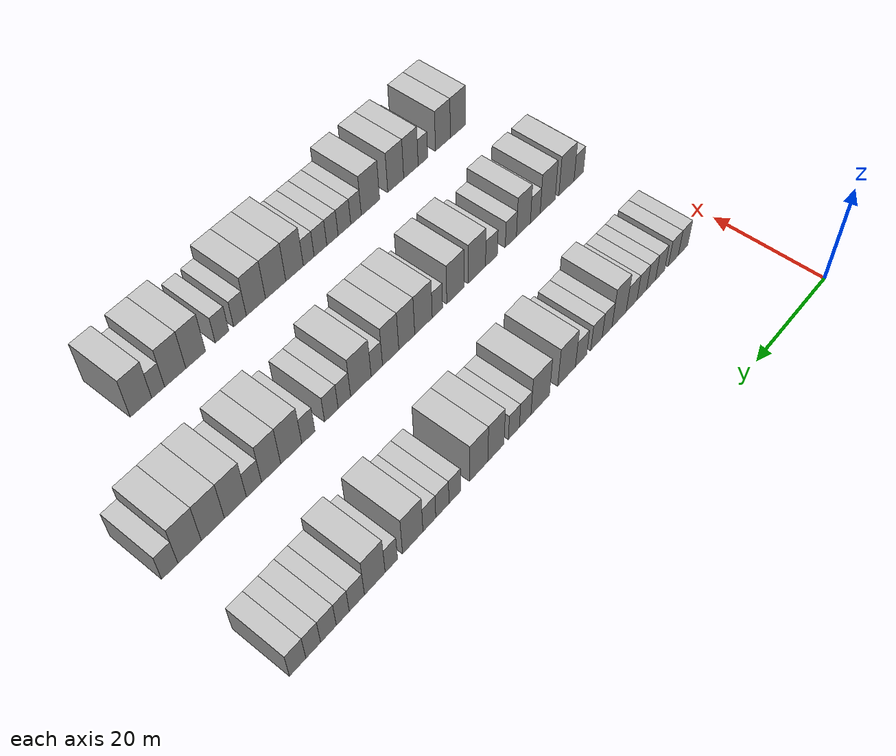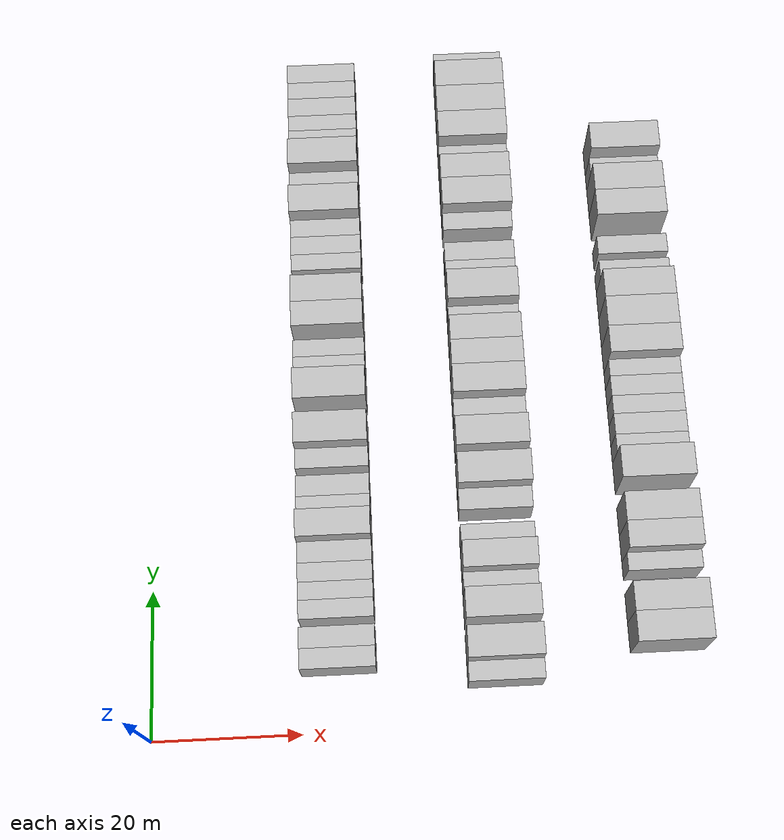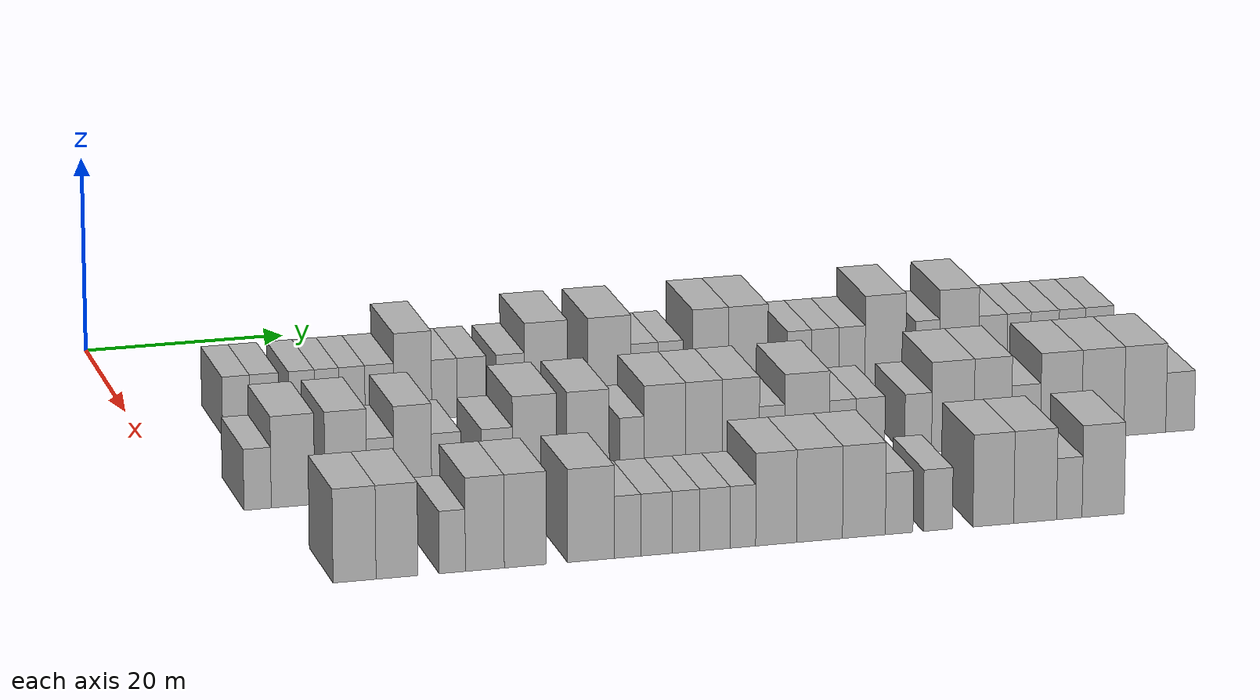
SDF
<sdf version="1.6">
 <world name="default">
  <model name="building_99">
   <static>1</static>
   <pose>25.0000 8.9645 0 0.000000 0.000000 0.000000</pose>
   <link name="link">
    <pose>0 0 3.00 0 0 0</pose>
    <collision name="collision"><geometry><box><size>10.0000 2.7129 6.0000</size></box></geometry></collision>
    <visual name="visual">
     <cast_shadows>0</cast_shadows>
     <geometry><box><size>10.0000 2.7129 6.0000</size></box></geometry>
     <material>
      <script>
       <uri>model://HANNAS_wall/materials/scripts</uri>
       <uri>model://HANNAS_wall/materials/textures</uri>
       <name>vrc/HANNAS_wall</name>
      </script>
     </material>
    </visual>
   </link>
  </model>
  <model name="building_100">
   <static>1</static>
   <pose>25.0000 11.7311 0 0.000000 0.000000 0.000000</pose>
   <link name="link">
    <pose>0 0 3.00 0 0 0</pose>
    <collision name="collision"><geometry><box><size>10.0000 2.8203 6.0000</size></box></geometry></collision>
    <visual name="visual">
     <cast_shadows>0</cast_shadows>
     <geometry><box><size>10.0000 2.8203 6.0000</size></box></geometry>
     <material>
      <script>
       <uri>model://HANNAS_wall/materials/scripts</uri>
       <uri>model://HANNAS_wall/materials/textures</uri>
       <name>vrc/HANNAS_wall</name>
      </script>
     </material>
    </visual>
   </link>
  </model>
  <model name="building_101">
   <static>1</static>
   <pose>25.0000 15.4131 0 0.000000 0.000000 0.000000</pose>
   <link name="link">
    <pose>0 0 3.00 0 0 0</pose>
    <collision name="collision"><geometry><box><size>10.0000 2.5437 6.0000</size></box></geometry></collision>
    <visual name="visual">
     <cast_shadows>0</cast_shadows>
     <geometry><box><size>10.0000 2.5437 6.0000</size></box></geometry>
     <material>
      <script>
       <uri>model://HANNAS_wall/materials/scripts</uri>
       <uri>model://HANNAS_wall/materials/textures</uri>
       <name>vrc/HANNAS_wall</name>
      </script>
     </material>
    </visual>
   </link>
  </model>
  <model name="building_102">
   <static>1</static>
   <pose>25.0000 17.8882 0 0.000000 0.000000 0.000000</pose>
   <link name="link">
    <pose>0 0 3.00 0 0 0</pose>
    <collision name="collision"><geometry><box><size>10.0000 2.4064 6.0000</size></box></geometry></collision>
    <visual name="visual">
     <cast_shadows>0</cast_shadows>
     <geometry><box><size>10.0000 2.4064 6.0000</size></box></geometry>
     <material>
      <script>
       <uri>model://HANNAS_wall/materials/scripts</uri>
       <uri>model://HANNAS_wall/materials/textures</uri>
       <name>vrc/HANNAS_wall</name>
      </script>
     </material>
    </visual>
   </link>
  </model>
  <model name="building_103">
   <static>1</static>
   <pose>25.0000 20.3849 0 0.000000 0.000000 0.000000</pose>
   <link name="link">
    <pose>0 0 3.00 0 0 0</pose>
    <collision name="collision"><geometry><box><size>10.0000 2.5872 6.0000</size></box></geometry></collision>
    <visual name="visual">
     <cast_shadows>0</cast_shadows>
     <geometry><box><size>10.0000 2.5872 6.0000</size></box></geometry>
     <material>
      <script>
       <uri>model://HANNAS_wall/materials/scripts</uri>
       <uri>model://HANNAS_wall/materials/textures</uri>
       <name>vrc/HANNAS_wall</name>
      </script>
     </material>
    </visual>
   </link>
  </model>
  <model name="building_104">
   <static>1</static>
   <pose>25.0000 23.1243 0 0.000000 0.000000 0.000000</pose>
   <link name="link">
    <pose>0 0 3.00 0 0 0</pose>
    <collision name="collision"><geometry><box><size>10.0000 2.8915 6.0000</size></box></geometry></collision>
    <visual name="visual">
     <cast_shadows>0</cast_shadows>
     <geometry><box><size>10.0000 2.8915 6.0000</size></box></geometry>
     <material>
      <script>
       <uri>model://HANNAS_wall/materials/scripts</uri>
       <uri>model://HANNAS_wall/materials/textures</uri>
       <name>vrc/HANNAS_wall</name>
      </script>
     </material>
    </visual>
   </link>
  </model>
  <model name="building_105">
   <static>1</static>
   <pose>25.0000 26.4291 0 0.000000 0.000000 0.000000</pose>
   <link name="link">
    <pose>0 0 4.50 0 0 0</pose>
    <collision name="collision"><geometry><box><size>10.0000 3.7181 9.0000</size></box></geometry></collision>
    <visual name="visual">
     <cast_shadows>0</cast_shadows>
     <geometry><box><size>10.0000 3.7181 9.0000</size></box></geometry>
     <material>
      <script>
       <uri>model://HANNAS_wall/materials/scripts</uri>
       <uri>model://HANNAS_wall/materials/textures</uri>
       <name>vrc/HANNAS_wall</name>
      </script>
     </material>
    </visual>
   </link>
  </model>
  <model name="building_106">
   <static>1</static>
   <pose>25.0000 29.5588 0 0.000000 0.000000 0.000000</pose>
   <link name="link">
    <pose>0 0 3.00 0 0 0</pose>
    <collision name="collision"><geometry><box><size>10.0000 2.5411 6.0000</size></box></geometry></collision>
    <visual name="visual">
     <cast_shadows>0</cast_shadows>
     <geometry><box><size>10.0000 2.5411 6.0000</size></box></geometry>
     <material>
      <script>
       <uri>model://HANNAS_wall/materials/scripts</uri>
       <uri>model://HANNAS_wall/materials/textures</uri>
       <name>vrc/HANNAS_wall</name>
      </script>
     </material>
    </visual>
   </link>
  </model>
  <model name="building_107">
   <static>1</static>
   <pose>25.0000 32.2858 0 0.000000 0.000000 0.000000</pose>
   <link name="link">
    <pose>0 0 3.00 0 0 0</pose>
    <collision name="collision"><geometry><box><size>10.0000 2.9128 6.0000</size></box></geometry></collision>
    <visual name="visual">
     <cast_shadows>0</cast_shadows>
     <geometry><box><size>10.0000 2.9128 6.0000</size></box></geometry>
     <material>
      <script>
       <uri>model://HANNAS_wall/materials/scripts</uri>
       <uri>model://HANNAS_wall/materials/textures</uri>
       <name>vrc/HANNAS_wall</name>
      </script>
     </material>
    </visual>
   </link>
  </model>
  <model name="building_108">
   <static>1</static>
   <pose>25.0000 36.1577 0 0.000000 0.000000 0.000000</pose>
   <link name="link">
    <pose>0 0 3.00 0 0 0</pose>
    <collision name="collision"><geometry><box><size>10.0000 2.8310 6.0000</size></box></geometry></collision>
    <visual name="visual">
     <cast_shadows>0</cast_shadows>
     <geometry><box><size>10.0000 2.8310 6.0000</size></box></geometry>
     <material>
      <script>
       <uri>model://HANNAS_wall/materials/scripts</uri>
       <uri>model://HANNAS_wall/materials/textures</uri>
       <name>vrc/HANNAS_wall</name>
      </script>
     </material>
    </visual>
   </link>
  </model>
  <model name="building_109">
   <static>1</static>
   <pose>25.0000 39.7354 0 0.000000 0.000000 0.000000</pose>
   <link name="link">
    <pose>0 0 4.50 0 0 0</pose>
    <collision name="collision"><geometry><box><size>10.0000 4.3245 9.0000</size></box></geometry></collision>
    <visual name="visual">
     <cast_shadows>0</cast_shadows>
     <geometry><box><size>10.0000 4.3245 9.0000</size></box></geometry>
     <material>
      <script>
       <uri>model://HANNAS_wall/materials/scripts</uri>
       <uri>model://HANNAS_wall/materials/textures</uri>
       <name>vrc/HANNAS_wall</name>
      </script>
     </material>
    </visual>
   </link>
  </model>
  <model name="building_110">
   <static>1</static>
   <pose>25.0000 46.0947 0 0.000000 0.000000 0.000000</pose>
   <link name="link">
    <pose>0 0 4.50 0 0 0</pose>
    <collision name="collision"><geometry><box><size>10.0000 4.3939 9.0000</size></box></geometry></collision>
    <visual name="visual">
     <cast_shadows>0</cast_shadows>
     <geometry><box><size>10.0000 4.3939 9.0000</size></box></geometry>
     <material>
      <script>
       <uri>model://HANNAS_wall/materials/scripts</uri>
       <uri>model://HANNAS_wall/materials/textures</uri>
       <name>vrc/HANNAS_wall</name>
      </script>
     </material>
    </visual>
   </link>
  </model>
  <model name="building_111">
   <static>1</static>
   <pose>25.0000 49.6401 0 0.000000 0.000000 0.000000</pose>
   <link name="link">
    <pose>0 0 3.00 0 0 0</pose>
    <collision name="collision"><geometry><box><size>10.0000 2.6969 6.0000</size></box></geometry></collision>
    <visual name="visual">
     <cast_shadows>0</cast_shadows>
     <geometry><box><size>10.0000 2.6969 6.0000</size></box></geometry>
     <material>
      <script>
       <uri>model://HANNAS_wall/materials/scripts</uri>
       <uri>model://HANNAS_wall/materials/textures</uri>
       <name>vrc/HANNAS_wall</name>
      </script>
     </material>
    </visual>
   </link>
  </model>
  <model name="building_112">
   <static>1</static>
   <pose>25.0000 52.2549 0 0.000000 0.000000 0.000000</pose>
   <link name="link">
    <pose>0 0 3.00 0 0 0</pose>
    <collision name="collision"><geometry><box><size>10.0000 2.5328 6.0000</size></box></geometry></collision>
    <visual name="visual">
     <cast_shadows>0</cast_shadows>
     <geometry><box><size>10.0000 2.5328 6.0000</size></box></geometry>
     <material>
      <script>
       <uri>model://HANNAS_wall/materials/scripts</uri>
       <uri>model://HANNAS_wall/materials/textures</uri>
       <name>vrc/HANNAS_wall</name>
      </script>
     </material>
    </visual>
   </link>
  </model>
  <model name="building_113">
   <static>1</static>
   <pose>25.0000 56.3437 0 0.000000 0.000000 0.000000</pose>
   <link name="link">
    <pose>0 0 4.50 0 0 0</pose>
    <collision name="collision"><geometry><box><size>10.0000 3.6447 9.0000</size></box></geometry></collision>
    <visual name="visual">
     <cast_shadows>0</cast_shadows>
     <geometry><box><size>10.0000 3.6447 9.0000</size></box></geometry>
     <material>
      <script>
       <uri>model://HANNAS_wall/materials/scripts</uri>
       <uri>model://HANNAS_wall/materials/textures</uri>
       <name>vrc/HANNAS_wall</name>
      </script>
     </material>
    </visual>
   </link>
  </model>
  <model name="building_114">
   <static>1</static>
   <pose>25.0000 60.1610 0 0.000000 0.000000 0.000000</pose>
   <link name="link">
    <pose>0 0 4.50 0 0 0</pose>
    <collision name="collision"><geometry><box><size>10.0000 3.9901 9.0000</size></box></geometry></collision>
    <visual name="visual">
     <cast_shadows>0</cast_shadows>
     <geometry><box><size>10.0000 3.9901 9.0000</size></box></geometry>
     <material>
      <script>
       <uri>model://HANNAS_wall/materials/scripts</uri>
       <uri>model://HANNAS_wall/materials/textures</uri>
       <name>vrc/HANNAS_wall</name>
      </script>
     </material>
    </visual>
   </link>
  </model>
  <model name="building_115">
   <static>1</static>
   <pose>25.0000 65.3934 0 0.000000 0.000000 0.000000</pose>
   <link name="link">
    <pose>0 0 3.00 0 0 0</pose>
    <collision name="collision"><geometry><box><size>10.0000 2.4747 6.0000</size></box></geometry></collision>
    <visual name="visual">
     <cast_shadows>0</cast_shadows>
     <geometry><box><size>10.0000 2.4747 6.0000</size></box></geometry>
     <material>
      <script>
       <uri>model://HANNAS_wall/materials/scripts</uri>
       <uri>model://HANNAS_wall/materials/textures</uri>
       <name>vrc/HANNAS_wall</name>
      </script>
     </material>
    </visual>
   </link>
  </model>
  <model name="building_116">
   <static>1</static>
   <pose>25.0000 68.0189 0 0.000000 0.000000 0.000000</pose>
   <link name="link">
    <pose>0 0 3.00 0 0 0</pose>
    <collision name="collision"><geometry><box><size>10.0000 2.7763 6.0000</size></box></geometry></collision>
    <visual name="visual">
     <cast_shadows>0</cast_shadows>
     <geometry><box><size>10.0000 2.7763 6.0000</size></box></geometry>
     <material>
      <script>
       <uri>model://HANNAS_wall/materials/scripts</uri>
       <uri>model://HANNAS_wall/materials/textures</uri>
       <name>vrc/HANNAS_wall</name>
      </script>
     </material>
    </visual>
   </link>
  </model>
  <model name="building_117">
   <static>1</static>
   <pose>25.0000 70.7482 0 0.000000 0.000000 0.000000</pose>
   <link name="link">
    <pose>0 0 3.00 0 0 0</pose>
    <collision name="collision"><geometry><box><size>10.0000 2.6823 6.0000</size></box></geometry></collision>
    <visual name="visual">
     <cast_shadows>0</cast_shadows>
     <geometry><box><size>10.0000 2.6823 6.0000</size></box></geometry>
     <material>
      <script>
       <uri>model://HANNAS_wall/materials/scripts</uri>
       <uri>model://HANNAS_wall/materials/textures</uri>
       <name>vrc/HANNAS_wall</name>
      </script>
     </material>
    </visual>
   </link>
  </model>
  <model name="building_118">
   <static>1</static>
   <pose>25.0000 74.1736 0 0.000000 0.000000 0.000000</pose>
   <link name="link">
    <pose>0 0 4.50 0 0 0</pose>
    <collision name="collision"><geometry><box><size>10.0000 4.1684 9.0000</size></box></geometry></collision>
    <visual name="visual">
     <cast_shadows>0</cast_shadows>
     <geometry><box><size>10.0000 4.1684 9.0000</size></box></geometry>
     <material>
      <script>
       <uri>model://HANNAS_wall/materials/scripts</uri>
       <uri>model://HANNAS_wall/materials/textures</uri>
       <name>vrc/HANNAS_wall</name>
      </script>
     </material>
    </visual>
   </link>
  </model>
  <model name="building_119">
   <static>1</static>
   <pose>25.0000 78.4965 0 0.000000 0.000000 0.000000</pose>
   <link name="link">
    <pose>0 0 3.00 0 0 0</pose>
    <collision name="collision"><geometry><box><size>10.0000 2.4775 6.0000</size></box></geometry></collision>
    <visual name="visual">
     <cast_shadows>0</cast_shadows>
     <geometry><box><size>10.0000 2.4775 6.0000</size></box></geometry>
     <material>
      <script>
       <uri>model://HANNAS_wall/materials/scripts</uri>
       <uri>model://HANNAS_wall/materials/textures</uri>
       <name>vrc/HANNAS_wall</name>
      </script>
     </material>
    </visual>
   </link>
  </model>
  <model name="building_120">
   <static>1</static>
   <pose>25.0000 81.7642 0 0.000000 0.000000 0.000000</pose>
   <link name="link">
    <pose>0 0 4.50 0 0 0</pose>
    <collision name="collision"><geometry><box><size>10.0000 4.0578 9.0000</size></box></geometry></collision>
    <visual name="visual">
     <cast_shadows>0</cast_shadows>
     <geometry><box><size>10.0000 4.0578 9.0000</size></box></geometry>
     <material>
      <script>
       <uri>model://HANNAS_wall/materials/scripts</uri>
       <uri>model://HANNAS_wall/materials/textures</uri>
       <name>vrc/HANNAS_wall</name>
      </script>
     </material>
    </visual>
   </link>
  </model>
  <model name="building_121">
   <static>1</static>
   <pose>25.0000 85.2572 0 0.000000 0.000000 0.000000</pose>
   <link name="link">
    <pose>0 0 3.00 0 0 0</pose>
    <collision name="collision"><geometry><box><size>10.0000 2.9283 6.0000</size></box></geometry></collision>
    <visual name="visual">
     <cast_shadows>0</cast_shadows>
     <geometry><box><size>10.0000 2.9283 6.0000</size></box></geometry>
     <material>
      <script>
       <uri>model://HANNAS_wall/materials/scripts</uri>
       <uri>model://HANNAS_wall/materials/textures</uri>
       <name>vrc/HANNAS_wall</name>
      </script>
     </material>
    </visual>
   </link>
  </model>
  <model name="building_122">
   <static>1</static>
   <pose>25.0000 87.9478 0 0.000000 0.000000 0.000000</pose>
   <link name="link">
    <pose>0 0 3.00 0 0 0</pose>
    <collision name="collision"><geometry><box><size>10.0000 2.4527 6.0000</size></box></geometry></collision>
    <visual name="visual">
     <cast_shadows>0</cast_shadows>
     <geometry><box><size>10.0000 2.4527 6.0000</size></box></geometry>
     <material>
      <script>
       <uri>model://HANNAS_wall/materials/scripts</uri>
       <uri>model://HANNAS_wall/materials/textures</uri>
       <name>vrc/HANNAS_wall</name>
      </script>
     </material>
    </visual>
   </link>
  </model>
  <model name="building_123">
   <static>1</static>
   <pose>25.0000 90.6356 0 0.000000 0.000000 0.000000</pose>
   <link name="link">
    <pose>0 0 3.00 0 0 0</pose>
    <collision name="collision"><geometry><box><size>10.0000 2.9231 6.0000</size></box></geometry></collision>
    <visual name="visual">
     <cast_shadows>0</cast_shadows>
     <geometry><box><size>10.0000 2.9231 6.0000</size></box></geometry>
     <material>
      <script>
       <uri>model://HANNAS_wall/materials/scripts</uri>
       <uri>model://HANNAS_wall/materials/textures</uri>
       <name>vrc/HANNAS_wall</name>
      </script>
     </material>
    </visual>
   </link>
  </model>
  <model name="building_124">
   <static>1</static>
   <pose>25.0000 93.4449 0 0.000000 0.000000 0.000000</pose>
   <link name="link">
    <pose>0 0 3.00 0 0 0</pose>
    <collision name="collision"><geometry><box><size>10.0000 2.6955 6.0000</size></box></geometry></collision>
    <visual name="visual">
     <cast_shadows>0</cast_shadows>
     <geometry><box><size>10.0000 2.6955 6.0000</size></box></geometry>
     <material>
      <script>
       <uri>model://HANNAS_wall/materials/scripts</uri>
       <uri>model://HANNAS_wall/materials/textures</uri>
       <name>vrc/HANNAS_wall</name>
      </script>
     </material>
    </visual>
   </link>
  </model>
  <model name="building_125">
   <static>1</static>
   <pose>25.0000 96.2879 0 0.000000 0.000000 0.000000</pose>
   <link name="link">
    <pose>0 0 3.00 0 0 0</pose>
    <collision name="collision"><geometry><box><size>10.0000 2.9904 6.0000</size></box></geometry></collision>
    <visual name="visual">
     <cast_shadows>0</cast_shadows>
     <geometry><box><size>10.0000 2.9904 6.0000</size></box></geometry>
     <material>
      <script>
       <uri>model://HANNAS_wall/materials/scripts</uri>
       <uri>model://HANNAS_wall/materials/textures</uri>
       <name>vrc/HANNAS_wall</name>
      </script>
     </material>
    </visual>
   </link>
  </model>
  <model name="building_288">
   <static>1</static>
   <pose>47.0000 6.3342 0 0.000000 0.000000 0.000000</pose>
   <link name="link">
    <pose>0 0 3.00 0 0 0</pose>
    <collision name="collision"><geometry><box><size>10.0000 2.6097 6.0000</size></box></geometry></collision>
    <visual name="visual">
     <cast_shadows>0</cast_shadows>
     <geometry><box><size>10.0000 2.6097 6.0000</size></box></geometry>
     <material>
      <script>
       <uri>model://HANNAS_wall/materials/scripts</uri>
       <uri>model://HANNAS_wall/materials/textures</uri>
       <name>vrc/HANNAS_wall</name>
      </script>
     </material>
    </visual>
   </link>
  </model>
  <model name="building_289">
   <static>1</static>
   <pose>47.0000 9.7209 0 0.000000 0.000000 0.000000</pose>
   <link name="link">
    <pose>0 0 4.50 0 0 0</pose>
    <collision name="collision"><geometry><box><size>10.0000 4.1637 9.0000</size></box></geometry></collision>
    <visual name="visual">
     <cast_shadows>0</cast_shadows>
     <geometry><box><size>10.0000 4.1637 9.0000</size></box></geometry>
     <material>
      <script>
       <uri>model://HANNAS_wall/materials/scripts</uri>
       <uri>model://HANNAS_wall/materials/textures</uri>
       <name>vrc/HANNAS_wall</name>
      </script>
     </material>
    </visual>
   </link>
  </model>
  <model name="building_290">
   <static>1</static>
   <pose>47.0000 14.8122 0 0.000000 0.000000 0.000000</pose>
   <link name="link">
    <pose>0 0 4.50 0 0 0</pose>
    <collision name="collision"><geometry><box><size>10.0000 4.0189 9.0000</size></box></geometry></collision>
    <visual name="visual">
     <cast_shadows>0</cast_shadows>
     <geometry><box><size>10.0000 4.0189 9.0000</size></box></geometry>
     <material>
      <script>
       <uri>model://HANNAS_wall/materials/scripts</uri>
       <uri>model://HANNAS_wall/materials/textures</uri>
       <name>vrc/HANNAS_wall</name>
      </script>
     </material>
    </visual>
   </link>
  </model>
  <model name="building_291">
   <static>1</static>
   <pose>47.0000 18.1197 0 0.000000 0.000000 0.000000</pose>
   <link name="link">
    <pose>0 0 3.00 0 0 0</pose>
    <collision name="collision"><geometry><box><size>10.0000 2.5962 6.0000</size></box></geometry></collision>
    <visual name="visual">
     <cast_shadows>0</cast_shadows>
     <geometry><box><size>10.0000 2.5962 6.0000</size></box></geometry>
     <material>
      <script>
       <uri>model://HANNAS_wall/materials/scripts</uri>
       <uri>model://HANNAS_wall/materials/textures</uri>
       <name>vrc/HANNAS_wall</name>
      </script>
     </material>
    </visual>
   </link>
  </model>
  <model name="building_292">
   <static>1</static>
   <pose>47.0000 21.2383 0 0.000000 0.000000 0.000000</pose>
   <link name="link">
    <pose>0 0 4.50 0 0 0</pose>
    <collision name="collision"><geometry><box><size>10.0000 3.6410 9.0000</size></box></geometry></collision>
    <visual name="visual">
     <cast_shadows>0</cast_shadows>
     <geometry><box><size>10.0000 3.6410 9.0000</size></box></geometry>
     <material>
      <script>
       <uri>model://HANNAS_wall/materials/scripts</uri>
       <uri>model://HANNAS_wall/materials/textures</uri>
       <name>vrc/HANNAS_wall</name>
      </script>
     </material>
    </visual>
   </link>
  </model>
  <model name="building_293">
   <static>1</static>
   <pose>47.0000 24.4889 0 0.000000 0.000000 0.000000</pose>
   <link name="link">
    <pose>0 0 3.00 0 0 0</pose>
    <collision name="collision"><geometry><box><size>10.0000 2.8601 6.0000</size></box></geometry></collision>
    <visual name="visual">
     <cast_shadows>0</cast_shadows>
     <geometry><box><size>10.0000 2.8601 6.0000</size></box></geometry>
     <material>
      <script>
       <uri>model://HANNAS_wall/materials/scripts</uri>
       <uri>model://HANNAS_wall/materials/textures</uri>
       <name>vrc/HANNAS_wall</name>
      </script>
     </material>
    </visual>
   </link>
  </model>
  <model name="building_294">
   <static>1</static>
   <pose>47.0000 29.4091 0 0.000000 0.000000 0.000000</pose>
   <link name="link">
    <pose>0 0 3.00 0 0 0</pose>
    <collision name="collision"><geometry><box><size>10.0000 2.9803 6.0000</size></box></geometry></collision>
    <visual name="visual">
     <cast_shadows>0</cast_shadows>
     <geometry><box><size>10.0000 2.9803 6.0000</size></box></geometry>
     <material>
      <script>
       <uri>model://HANNAS_wall/materials/scripts</uri>
       <uri>model://HANNAS_wall/materials/textures</uri>
       <name>vrc/HANNAS_wall</name>
      </script>
     </material>
    </visual>
   </link>
  </model>
  <model name="building_295">
   <static>1</static>
   <pose>47.0000 33.0497 0 0.000000 0.000000 0.000000</pose>
   <link name="link">
    <pose>0 0 4.50 0 0 0</pose>
    <collision name="collision"><geometry><box><size>10.0000 4.3010 9.0000</size></box></geometry></collision>
    <visual name="visual">
     <cast_shadows>0</cast_shadows>
     <geometry><box><size>10.0000 4.3010 9.0000</size></box></geometry>
     <material>
      <script>
       <uri>model://HANNAS_wall/materials/scripts</uri>
       <uri>model://HANNAS_wall/materials/textures</uri>
       <name>vrc/HANNAS_wall</name>
      </script>
     </material>
    </visual>
   </link>
  </model>
  <model name="building_296">
   <static>1</static>
   <pose>47.0000 38.2650 0 0.000000 0.000000 0.000000</pose>
   <link name="link">
    <pose>0 0 4.50 0 0 0</pose>
    <collision name="collision"><geometry><box><size>10.0000 4.1296 9.0000</size></box></geometry></collision>
    <visual name="visual">
     <cast_shadows>0</cast_shadows>
     <geometry><box><size>10.0000 4.1296 9.0000</size></box></geometry>
     <material>
      <script>
       <uri>model://HANNAS_wall/materials/scripts</uri>
       <uri>model://HANNAS_wall/materials/textures</uri>
       <name>vrc/HANNAS_wall</name>
      </script>
     </material>
    </visual>
   </link>
  </model>
  <model name="building_297">
   <static>1</static>
   <pose>47.0000 42.5471 0 0.000000 0.000000 0.000000</pose>
   <link name="link">
    <pose>0 0 3.00 0 0 0</pose>
    <collision name="collision"><geometry><box><size>10.0000 2.4347 6.0000</size></box></geometry></collision>
    <visual name="visual">
     <cast_shadows>0</cast_shadows>
     <geometry><box><size>10.0000 2.4347 6.0000</size></box></geometry>
     <material>
      <script>
       <uri>model://HANNAS_wall/materials/scripts</uri>
       <uri>model://HANNAS_wall/materials/textures</uri>
       <name>vrc/HANNAS_wall</name>
      </script>
     </material>
    </visual>
   </link>
  </model>
  <model name="building_298">
   <static>1</static>
   <pose>47.0000 45.7929 0 0.000000 0.000000 0.000000</pose>
   <link name="link">
    <pose>0 0 4.50 0 0 0</pose>
    <collision name="collision"><geometry><box><size>10.0000 4.0568 9.0000</size></box></geometry></collision>
    <visual name="visual">
     <cast_shadows>0</cast_shadows>
     <geometry><box><size>10.0000 4.0568 9.0000</size></box></geometry>
     <material>
      <script>
       <uri>model://HANNAS_wall/materials/scripts</uri>
       <uri>model://HANNAS_wall/materials/textures</uri>
       <name>vrc/HANNAS_wall</name>
      </script>
     </material>
    </visual>
   </link>
  </model>
  <model name="building_299">
   <static>1</static>
   <pose>47.0000 49.6313 0 0.000000 0.000000 0.000000</pose>
   <link name="link">
    <pose>0 0 4.50 0 0 0</pose>
    <collision name="collision"><geometry><box><size>10.0000 3.6200 9.0000</size></box></geometry></collision>
    <visual name="visual">
     <cast_shadows>0</cast_shadows>
     <geometry><box><size>10.0000 3.6200 9.0000</size></box></geometry>
     <material>
      <script>
       <uri>model://HANNAS_wall/materials/scripts</uri>
       <uri>model://HANNAS_wall/materials/textures</uri>
       <name>vrc/HANNAS_wall</name>
      </script>
     </material>
    </visual>
   </link>
  </model>
  <model name="building_300">
   <static>1</static>
   <pose>47.0000 53.2608 0 0.000000 0.000000 0.000000</pose>
   <link name="link">
    <pose>0 0 4.50 0 0 0</pose>
    <collision name="collision"><geometry><box><size>10.0000 3.6391 9.0000</size></box></geometry></collision>
    <visual name="visual">
     <cast_shadows>0</cast_shadows>
     <geometry><box><size>10.0000 3.6391 9.0000</size></box></geometry>
     <material>
      <script>
       <uri>model://HANNAS_wall/materials/scripts</uri>
       <uri>model://HANNAS_wall/materials/textures</uri>
       <name>vrc/HANNAS_wall</name>
      </script>
     </material>
    </visual>
   </link>
  </model>
  <model name="building_301">
   <static>1</static>
   <pose>47.0000 56.3295 0 0.000000 0.000000 0.000000</pose>
   <link name="link">
    <pose>0 0 3.00 0 0 0</pose>
    <collision name="collision"><geometry><box><size>10.0000 2.4983 6.0000</size></box></geometry></collision>
    <visual name="visual">
     <cast_shadows>0</cast_shadows>
     <geometry><box><size>10.0000 2.4983 6.0000</size></box></geometry>
     <material>
      <script>
       <uri>model://HANNAS_wall/materials/scripts</uri>
       <uri>model://HANNAS_wall/materials/textures</uri>
       <name>vrc/HANNAS_wall</name>
      </script>
     </material>
    </visual>
   </link>
  </model>
  <model name="building_302">
   <static>1</static>
   <pose>47.0000 59.8018 0 0.000000 0.000000 0.000000</pose>
   <link name="link">
    <pose>0 0 4.50 0 0 0</pose>
    <collision name="collision"><geometry><box><size>10.0000 4.4465 9.0000</size></box></geometry></collision>
    <visual name="visual">
     <cast_shadows>0</cast_shadows>
     <geometry><box><size>10.0000 4.4465 9.0000</size></box></geometry>
     <material>
      <script>
       <uri>model://HANNAS_wall/materials/scripts</uri>
       <uri>model://HANNAS_wall/materials/textures</uri>
       <name>vrc/HANNAS_wall</name>
      </script>
     </material>
    </visual>
   </link>
  </model>
  <model name="building_303">
   <static>1</static>
   <pose>47.0000 63.3540 0 0.000000 0.000000 0.000000</pose>
   <link name="link">
    <pose>0 0 3.00 0 0 0</pose>
    <collision name="collision"><geometry><box><size>10.0000 2.6578 6.0000</size></box></geometry></collision>
    <visual name="visual">
     <cast_shadows>0</cast_shadows>
     <geometry><box><size>10.0000 2.6578 6.0000</size></box></geometry>
     <material>
      <script>
       <uri>model://HANNAS_wall/materials/scripts</uri>
       <uri>model://HANNAS_wall/materials/textures</uri>
       <name>vrc/HANNAS_wall</name>
      </script>
     </material>
    </visual>
   </link>
  </model>
  <model name="building_304">
   <static>1</static>
   <pose>47.0000 66.1042 0 0.000000 0.000000 0.000000</pose>
   <link name="link">
    <pose>0 0 3.00 0 0 0</pose>
    <collision name="collision"><geometry><box><size>10.0000 2.8426 6.0000</size></box></geometry></collision>
    <visual name="visual">
     <cast_shadows>0</cast_shadows>
     <geometry><box><size>10.0000 2.8426 6.0000</size></box></geometry>
     <material>
      <script>
       <uri>model://HANNAS_wall/materials/scripts</uri>
       <uri>model://HANNAS_wall/materials/textures</uri>
       <name>vrc/HANNAS_wall</name>
      </script>
     </material>
    </visual>
   </link>
  </model>
  <model name="building_305">
   <static>1</static>
   <pose>47.0000 70.8672 0 0.000000 0.000000 0.000000</pose>
   <link name="link">
    <pose>0 0 3.00 0 0 0</pose>
    <collision name="collision"><geometry><box><size>10.0000 2.6834 6.0000</size></box></geometry></collision>
    <visual name="visual">
     <cast_shadows>0</cast_shadows>
     <geometry><box><size>10.0000 2.6834 6.0000</size></box></geometry>
     <material>
      <script>
       <uri>model://HANNAS_wall/materials/scripts</uri>
       <uri>model://HANNAS_wall/materials/textures</uri>
       <name>vrc/HANNAS_wall</name>
      </script>
     </material>
    </visual>
   </link>
  </model>
  <model name="building_306">
   <static>1</static>
   <pose>47.0000 74.3268 0 0.000000 0.000000 0.000000</pose>
   <link name="link">
    <pose>0 0 4.50 0 0 0</pose>
    <collision name="collision"><geometry><box><size>10.0000 4.2358 9.0000</size></box></geometry></collision>
    <visual name="visual">
     <cast_shadows>0</cast_shadows>
     <geometry><box><size>10.0000 4.2358 9.0000</size></box></geometry>
     <material>
      <script>
       <uri>model://HANNAS_wall/materials/scripts</uri>
       <uri>model://HANNAS_wall/materials/textures</uri>
       <name>vrc/HANNAS_wall</name>
      </script>
     </material>
    </visual>
   </link>
  </model>
  <model name="building_307">
   <static>1</static>
   <pose>47.0000 78.3238 0 0.000000 0.000000 0.000000</pose>
   <link name="link">
    <pose>0 0 4.50 0 0 0</pose>
    <collision name="collision"><geometry><box><size>10.0000 3.7583 9.0000</size></box></geometry></collision>
    <visual name="visual">
     <cast_shadows>0</cast_shadows>
     <geometry><box><size>10.0000 3.7583 9.0000</size></box></geometry>
     <material>
      <script>
       <uri>model://HANNAS_wall/materials/scripts</uri>
       <uri>model://HANNAS_wall/materials/textures</uri>
       <name>vrc/HANNAS_wall</name>
      </script>
     </material>
    </visual>
   </link>
  </model>
  <model name="building_308">
   <static>1</static>
   <pose>47.0000 81.6667 0 0.000000 0.000000 0.000000</pose>
   <link name="link">
    <pose>0 0 3.00 0 0 0</pose>
    <collision name="collision"><geometry><box><size>10.0000 2.9274 6.0000</size></box></geometry></collision>
    <visual name="visual">
     <cast_shadows>0</cast_shadows>
     <geometry><box><size>10.0000 2.9274 6.0000</size></box></geometry>
     <material>
      <script>
       <uri>model://HANNAS_wall/materials/scripts</uri>
       <uri>model://HANNAS_wall/materials/textures</uri>
       <name>vrc/HANNAS_wall</name>
      </script>
     </material>
    </visual>
   </link>
  </model>
  <model name="building_309">
   <static>1</static>
   <pose>47.0000 85.2133 0 0.000000 0.000000 0.000000</pose>
   <link name="link">
    <pose>0 0 4.50 0 0 0</pose>
    <collision name="collision"><geometry><box><size>10.0000 4.1660 9.0000</size></box></geometry></collision>
    <visual name="visual">
     <cast_shadows>0</cast_shadows>
     <geometry><box><size>10.0000 4.1660 9.0000</size></box></geometry>
     <material>
      <script>
       <uri>model://HANNAS_wall/materials/scripts</uri>
       <uri>model://HANNAS_wall/materials/textures</uri>
       <name>vrc/HANNAS_wall</name>
      </script>
     </material>
    </visual>
   </link>
  </model>
  <model name="building_310">
   <static>1</static>
   <pose>47.0000 89.4369 0 0.000000 0.000000 0.000000</pose>
   <link name="link">
    <pose>0 0 4.50 0 0 0</pose>
    <collision name="collision"><geometry><box><size>10.0000 4.2812 9.0000</size></box></geometry></collision>
    <visual name="visual">
     <cast_shadows>0</cast_shadows>
     <geometry><box><size>10.0000 4.2812 9.0000</size></box></geometry>
     <material>
      <script>
       <uri>model://HANNAS_wall/materials/scripts</uri>
       <uri>model://HANNAS_wall/materials/textures</uri>
       <name>vrc/HANNAS_wall</name>
      </script>
     </material>
    </visual>
   </link>
  </model>
  <model name="building_311">
   <static>1</static>
   <pose>47.0000 93.6981 0 0.000000 0.000000 0.000000</pose>
   <link name="link">
    <pose>0 0 4.50 0 0 0</pose>
    <collision name="collision"><geometry><box><size>10.0000 4.2412 9.0000</size></box></geometry></collision>
    <visual name="visual">
     <cast_shadows>0</cast_shadows>
     <geometry><box><size>10.0000 4.2412 9.0000</size></box></geometry>
     <material>
      <script>
       <uri>model://HANNAS_wall/materials/scripts</uri>
       <uri>model://HANNAS_wall/materials/textures</uri>
       <name>vrc/HANNAS_wall</name>
      </script>
     </material>
    </visual>
   </link>
  </model>
  <model name="building_312">
   <static>1</static>
   <pose>47.0000 97.2691 0 0.000000 0.000000 0.000000</pose>
   <link name="link">
    <pose>0 0 3.00 0 0 0</pose>
    <collision name="collision"><geometry><box><size>10.0000 2.9009 6.0000</size></box></geometry></collision>
    <visual name="visual">
     <cast_shadows>0</cast_shadows>
     <geometry><box><size>10.0000 2.9009 6.0000</size></box></geometry>
     <material>
      <script>
       <uri>model://HANNAS_wall/materials/scripts</uri>
       <uri>model://HANNAS_wall/materials/textures</uri>
       <name>vrc/HANNAS_wall</name>
      </script>
     </material>
    </visual>
   </link>
  </model>
  <model name="building_490">
   <static>1</static>
   <pose>69.0000 10.6289 0 0.000000 0.000000 0.000000</pose>
   <link name="link">
    <pose>0 0 4.50 0 0 0</pose>
    <collision name="collision"><geometry><box><size>10.0000 4.0060 9.0000</size></box></geometry></collision>
    <visual name="visual">
     <cast_shadows>0</cast_shadows>
     <geometry><box><size>10.0000 4.0060 9.0000</size></box></geometry>
     <material>
      <script>
       <uri>model://HANNAS_wall/materials/scripts</uri>
       <uri>model://HANNAS_wall/materials/textures</uri>
       <name>vrc/HANNAS_wall</name>
      </script>
     </material>
    </visual>
   </link>
  </model>
  <model name="building_491">
   <static>1</static>
   <pose>69.0000 14.5885 0 0.000000 0.000000 0.000000</pose>
   <link name="link">
    <pose>0 0 4.50 0 0 0</pose>
    <collision name="collision"><geometry><box><size>10.0000 3.9132 9.0000</size></box></geometry></collision>
    <visual name="visual">
     <cast_shadows>0</cast_shadows>
     <geometry><box><size>10.0000 3.9132 9.0000</size></box></geometry>
     <material>
      <script>
       <uri>model://HANNAS_wall/materials/scripts</uri>
       <uri>model://HANNAS_wall/materials/textures</uri>
       <name>vrc/HANNAS_wall</name>
      </script>
     </material>
    </visual>
   </link>
  </model>
  <model name="building_492">
   <static>1</static>
   <pose>69.0000 19.7711 0 0.000000 0.000000 0.000000</pose>
   <link name="link">
    <pose>0 0 3.00 0 0 0</pose>
    <collision name="collision"><geometry><box><size>10.0000 2.4522 6.0000</size></box></geometry></collision>
    <visual name="visual">
     <cast_shadows>0</cast_shadows>
     <geometry><box><size>10.0000 2.4522 6.0000</size></box></geometry>
     <material>
      <script>
       <uri>model://HANNAS_wall/materials/scripts</uri>
       <uri>model://HANNAS_wall/materials/textures</uri>
       <name>vrc/HANNAS_wall</name>
      </script>
     </material>
    </visual>
   </link>
  </model>
  <model name="building_493">
   <static>1</static>
   <pose>69.0000 22.8274 0 0.000000 0.000000 0.000000</pose>
   <link name="link">
    <pose>0 0 4.50 0 0 0</pose>
    <collision name="collision"><geometry><box><size>10.0000 3.6604 9.0000</size></box></geometry></collision>
    <visual name="visual">
     <cast_shadows>0</cast_shadows>
     <geometry><box><size>10.0000 3.6604 9.0000</size></box></geometry>
     <material>
      <script>
       <uri>model://HANNAS_wall/materials/scripts</uri>
       <uri>model://HANNAS_wall/materials/textures</uri>
       <name>vrc/HANNAS_wall</name>
      </script>
     </material>
    </visual>
   </link>
  </model>
  <model name="building_494">
   <static>1</static>
   <pose>69.0000 26.6442 0 0.000000 0.000000 0.000000</pose>
   <link name="link">
    <pose>0 0 4.50 0 0 0</pose>
    <collision name="collision"><geometry><box><size>10.0000 3.9731 9.0000</size></box></geometry></collision>
    <visual name="visual">
     <cast_shadows>0</cast_shadows>
     <geometry><box><size>10.0000 3.9731 9.0000</size></box></geometry>
     <material>
      <script>
       <uri>model://HANNAS_wall/materials/scripts</uri>
       <uri>model://HANNAS_wall/materials/textures</uri>
       <name>vrc/HANNAS_wall</name>
      </script>
     </material>
    </visual>
   </link>
  </model>
  <model name="building_495">
   <static>1</static>
   <pose>69.0000 32.8476 0 0.000000 0.000000 0.000000</pose>
   <link name="link">
    <pose>0 0 4.50 0 0 0</pose>
    <collision name="collision"><geometry><box><size>10.0000 4.4337 9.0000</size></box></geometry></collision>
    <visual name="visual">
     <cast_shadows>0</cast_shadows>
     <geometry><box><size>10.0000 4.4337 9.0000</size></box></geometry>
     <material>
      <script>
       <uri>model://HANNAS_wall/materials/scripts</uri>
       <uri>model://HANNAS_wall/materials/textures</uri>
       <name>vrc/HANNAS_wall</name>
      </script>
     </material>
    </visual>
   </link>
  </model>
  <model name="building_496">
   <static>1</static>
   <pose>69.0000 36.3159 0 0.000000 0.000000 0.000000</pose>
   <link name="link">
    <pose>0 0 3.00 0 0 0</pose>
    <collision name="collision"><geometry><box><size>10.0000 2.5029 6.0000</size></box></geometry></collision>
    <visual name="visual">
     <cast_shadows>0</cast_shadows>
     <geometry><box><size>10.0000 2.5029 6.0000</size></box></geometry>
     <material>
      <script>
       <uri>model://HANNAS_wall/materials/scripts</uri>
       <uri>model://HANNAS_wall/materials/textures</uri>
       <name>vrc/HANNAS_wall</name>
      </script>
     </material>
    </visual>
   </link>
  </model>
  <model name="building_497">
   <static>1</static>
   <pose>69.0000 39.0614 0 0.000000 0.000000 0.000000</pose>
   <link name="link">
    <pose>0 0 3.00 0 0 0</pose>
    <collision name="collision"><geometry><box><size>10.0000 2.9882 6.0000</size></box></geometry></collision>
    <visual name="visual">
     <cast_shadows>0</cast_shadows>
     <geometry><box><size>10.0000 2.9882 6.0000</size></box></geometry>
     <material>
      <script>
       <uri>model://HANNAS_wall/materials/scripts</uri>
       <uri>model://HANNAS_wall/materials/textures</uri>
       <name>vrc/HANNAS_wall</name>
      </script>
     </material>
    </visual>
   </link>
  </model>
  <model name="building_498">
   <static>1</static>
   <pose>69.0000 41.8686 0 0.000000 0.000000 0.000000</pose>
   <link name="link">
    <pose>0 0 3.00 0 0 0</pose>
    <collision name="collision"><geometry><box><size>10.0000 2.6261 6.0000</size></box></geometry></collision>
    <visual name="visual">
     <cast_shadows>0</cast_shadows>
     <geometry><box><size>10.0000 2.6261 6.0000</size></box></geometry>
     <material>
      <script>
       <uri>model://HANNAS_wall/materials/scripts</uri>
       <uri>model://HANNAS_wall/materials/textures</uri>
       <name>vrc/HANNAS_wall</name>
      </script>
     </material>
    </visual>
   </link>
  </model>
  <model name="building_499">
   <static>1</static>
   <pose>69.0000 44.6322 0 0.000000 0.000000 0.000000</pose>
   <link name="link">
    <pose>0 0 3.00 0 0 0</pose>
    <collision name="collision"><geometry><box><size>10.0000 2.9011 6.0000</size></box></geometry></collision>
    <visual name="visual">
     <cast_shadows>0</cast_shadows>
     <geometry><box><size>10.0000 2.9011 6.0000</size></box></geometry>
     <material>
      <script>
       <uri>model://HANNAS_wall/materials/scripts</uri>
       <uri>model://HANNAS_wall/materials/textures</uri>
       <name>vrc/HANNAS_wall</name>
      </script>
     </material>
    </visual>
   </link>
  </model>
  <model name="building_500">
   <static>1</static>
   <pose>69.0000 47.3037 0 0.000000 0.000000 0.000000</pose>
   <link name="link">
    <pose>0 0 3.00 0 0 0</pose>
    <collision name="collision"><geometry><box><size>10.0000 2.4419 6.0000</size></box></geometry></collision>
    <visual name="visual">
     <cast_shadows>0</cast_shadows>
     <geometry><box><size>10.0000 2.4419 6.0000</size></box></geometry>
     <material>
      <script>
       <uri>model://HANNAS_wall/materials/scripts</uri>
       <uri>model://HANNAS_wall/materials/textures</uri>
       <name>vrc/HANNAS_wall</name>
      </script>
     </material>
    </visual>
   </link>
  </model>
  <model name="building_501">
   <static>1</static>
   <pose>69.0000 50.4882 0 0.000000 0.000000 0.000000</pose>
   <link name="link">
    <pose>0 0 4.50 0 0 0</pose>
    <collision name="collision"><geometry><box><size>10.0000 3.9270 9.0000</size></box></geometry></collision>
    <visual name="visual">
     <cast_shadows>0</cast_shadows>
     <geometry><box><size>10.0000 3.9270 9.0000</size></box></geometry>
     <material>
      <script>
       <uri>model://HANNAS_wall/materials/scripts</uri>
       <uri>model://HANNAS_wall/materials/textures</uri>
       <name>vrc/HANNAS_wall</name>
      </script>
     </material>
    </visual>
   </link>
  </model>
  <model name="building_502">
   <static>1</static>
   <pose>69.0000 54.6598 0 0.000000 0.000000 0.000000</pose>
   <link name="link">
    <pose>0 0 4.50 0 0 0</pose>
    <collision name="collision"><geometry><box><size>10.0000 4.4162 9.0000</size></box></geometry></collision>
    <visual name="visual">
     <cast_shadows>0</cast_shadows>
     <geometry><box><size>10.0000 4.4162 9.0000</size></box></geometry>
     <material>
      <script>
       <uri>model://HANNAS_wall/materials/scripts</uri>
       <uri>model://HANNAS_wall/materials/textures</uri>
       <name>vrc/HANNAS_wall</name>
      </script>
     </material>
    </visual>
   </link>
  </model>
  <model name="building_503">
   <static>1</static>
   <pose>69.0000 58.9377 0 0.000000 0.000000 0.000000</pose>
   <link name="link">
    <pose>0 0 4.50 0 0 0</pose>
    <collision name="collision"><geometry><box><size>10.0000 4.1396 9.0000</size></box></geometry></collision>
    <visual name="visual">
     <cast_shadows>0</cast_shadows>
     <geometry><box><size>10.0000 4.1396 9.0000</size></box></geometry>
     <material>
      <script>
       <uri>model://HANNAS_wall/materials/scripts</uri>
       <uri>model://HANNAS_wall/materials/textures</uri>
       <name>vrc/HANNAS_wall</name>
      </script>
     </material>
    </visual>
   </link>
  </model>
  <model name="building_504">
   <static>1</static>
   <pose>69.0000 62.3427 0 0.000000 0.000000 0.000000</pose>
   <link name="link">
    <pose>0 0 3.00 0 0 0</pose>
    <collision name="collision"><geometry><box><size>10.0000 2.6704 6.0000</size></box></geometry></collision>
    <visual name="visual">
     <cast_shadows>0</cast_shadows>
     <geometry><box><size>10.0000 2.6704 6.0000</size></box></geometry>
     <material>
      <script>
       <uri>model://HANNAS_wall/materials/scripts</uri>
       <uri>model://HANNAS_wall/materials/textures</uri>
       <name>vrc/HANNAS_wall</name>
      </script>
     </material>
    </visual>
   </link>
  </model>
  <model name="building_505">
   <static>1</static>
   <pose>69.0000 66.0835 0 0.000000 0.000000 0.000000</pose>
   <link name="link">
    <pose>0 0 3.00 0 0 0</pose>
    <collision name="collision"><geometry><box><size>10.0000 2.8113 6.0000</size></box></geometry></collision>
    <visual name="visual">
     <cast_shadows>0</cast_shadows>
     <geometry><box><size>10.0000 2.8113 6.0000</size></box></geometry>
     <material>
      <script>
       <uri>model://HANNAS_wall/materials/scripts</uri>
       <uri>model://HANNAS_wall/materials/textures</uri>
       <name>vrc/HANNAS_wall</name>
      </script>
     </material>
    </visual>
   </link>
  </model>
  <model name="building_506">
   <static>1</static>
   <pose>69.0000 71.4750 0 0.000000 0.000000 0.000000</pose>
   <link name="link">
    <pose>0 0 4.50 0 0 0</pose>
    <collision name="collision"><geometry><box><size>10.0000 3.9718 9.0000</size></box></geometry></collision>
    <visual name="visual">
     <cast_shadows>0</cast_shadows>
     <geometry><box><size>10.0000 3.9718 9.0000</size></box></geometry>
     <material>
      <script>
       <uri>model://HANNAS_wall/materials/scripts</uri>
       <uri>model://HANNAS_wall/materials/textures</uri>
       <name>vrc/HANNAS_wall</name>
      </script>
     </material>
    </visual>
   </link>
  </model>
  <model name="building_507">
   <static>1</static>
   <pose>69.0000 75.5488 0 0.000000 0.000000 0.000000</pose>
   <link name="link">
    <pose>0 0 4.50 0 0 0</pose>
    <collision name="collision"><geometry><box><size>10.0000 4.1758 9.0000</size></box></geometry></collision>
    <visual name="visual">
     <cast_shadows>0</cast_shadows>
     <geometry><box><size>10.0000 4.1758 9.0000</size></box></geometry>
     <material>
      <script>
       <uri>model://HANNAS_wall/materials/scripts</uri>
       <uri>model://HANNAS_wall/materials/textures</uri>
       <name>vrc/HANNAS_wall</name>
      </script>
     </material>
    </visual>
   </link>
  </model>
  <model name="building_508">
   <static>1</static>
   <pose>69.0000 78.8862 0 0.000000 0.000000 0.000000</pose>
   <link name="link">
    <pose>0 0 3.00 0 0 0</pose>
    <collision name="collision"><geometry><box><size>10.0000 2.4989 6.0000</size></box></geometry></collision>
    <visual name="visual">
     <cast_shadows>0</cast_shadows>
     <geometry><box><size>10.0000 2.4989 6.0000</size></box></geometry>
     <material>
      <script>
       <uri>model://HANNAS_wall/materials/scripts</uri>
       <uri>model://HANNAS_wall/materials/textures</uri>
       <name>vrc/HANNAS_wall</name>
      </script>
     </material>
    </visual>
   </link>
  </model>
  <model name="building_509">
   <static>1</static>
   <pose>69.0000 82.2025 0 0.000000 0.000000 0.000000</pose>
   <link name="link">
    <pose>0 0 4.50 0 0 0</pose>
    <collision name="collision"><geometry><box><size>10.0000 4.1337 9.0000</size></box></geometry></collision>
    <visual name="visual">
     <cast_shadows>0</cast_shadows>
     <geometry><box><size>10.0000 4.1337 9.0000</size></box></geometry>
     <material>
      <script>
       <uri>model://HANNAS_wall/materials/scripts</uri>
       <uri>model://HANNAS_wall/materials/textures</uri>
       <name>vrc/HANNAS_wall</name>
      </script>
     </material>
    </visual>
   </link>
  </model>
 </world>
</sdf>
